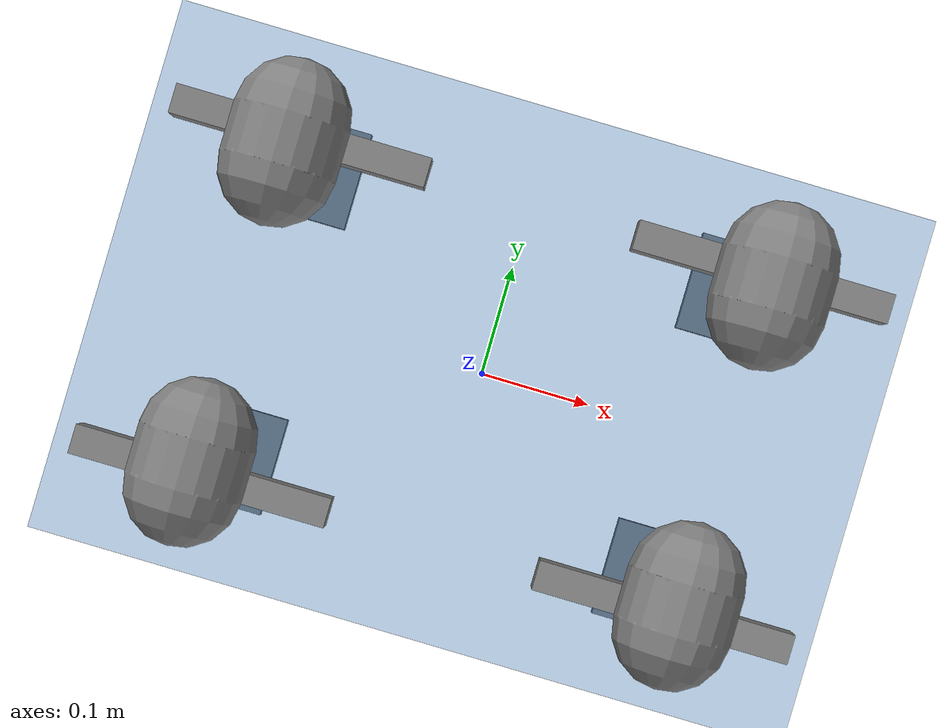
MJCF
<mujoco model="MuJoCo Model">
  <compiler angle="radian"/>

  <option gravity="0 0 -9.81" integrator="implicitfast">
    <flag multiccd="disable"/>
  </option>

  <worldbody>
    <geom name="ground_plane_0" size="5 5 5" type="plane" contype="2" conaffinity="2147483645" friction="2 0.005 0.0001" solref="0.02" rgba="0 0.3 0.6 1"/>
    <body name="body_0" pos="0 0 0.33">
      <inertial pos="0 0 0" quat="-0.000543471 0.713435 -0.00173769 0.700719" mass="7.279" diaginertia="0.107027 0.0980771 0.0244531"/>
      <joint name="joint_1" type="free"/>
      <geom name="shape_1_1" size="0.001" contype="4" conaffinity="2147483643" friction="2 0.005 0.0001" solref="0.02"/>
      <body name="body_1" pos="0.1934 0.0465 0">
        <inertial pos="0 0 0" quat="0.497014 0.499245 0.505462 0.498237" mass="0.767" diaginertia="0.000884029 0.000596003 0.000479967"/>
        <joint name="joint_2" pos="0 0 0" axis="1 0 0" solreflimit="-10000 -100" limited="true" range="-1.0472 1.0472" actuatorfrclimited="true" actuatorfrcrange="-23.7 23.7"/>
        <geom name="shape_2_2" size="0.046 0.02" pos="0 0.08 0" quat="0.707107 -0.707107 0 0" type="capsule" contype="4" conaffinity="2147483643" friction="2 0.005 0.0001" solref="0.02"/>
        <body name="body_2" pos="0 0.0955 0">
          <inertial pos="0 0 0" quat="0.829533 0.0847635 -0.0200632 0.551622" mass="1.241" diaginertia="0.00594973 0.00584149 0.000878787"/>
          <joint name="joint_6" pos="0 0 0" axis="0 1 0" solreflimit="-10000 -100" limited="true" range="-1.5708 3.13159" actuatorfrclimited="true" actuatorfrcrange="-23.7 23.7"/>
          <geom name="shape_3_3" size="0.1065 0.01225 0.017" pos="0 0 -0.1065" type="box" contype="4" conaffinity="2147483643" friction="2 0.005 0.0001" solref="0.02"/>
          <body name="body_3" pos="0 0 -0.213">
            <inertial pos="0 0 0" mass="0.194" diaginertia="0.0018236 0.0032398 0.0018236"/>
            <joint name="joint_10" pos="0 0 0" axis="0 1 0" solreflimit="-10000 -100" limited="true" range="-2.7227 -0.83776" actuatorfrclimited="true" actuatorfrcrange="-45.43 45.43"/>
            <geom name="shape_4_4" type="box" size="0.0283 0.0471 0.0082" pos="0 0 -0.2268" contype="4" conaffinity="2147483643" friction="2 0.005 0.0001" solref="0.02"/>
          </body>
        </body>
      </body>
      <body name="body_4" pos="0.1934 -0.0465 0">
        <inertial pos="0 0 0" quat="0.498237 0.505462 0.499245 0.497014" mass="0.767" diaginertia="0.000884029 0.000596003 0.000479967"/>
        <joint name="joint_3" pos="0 0 0" axis="1 0 0" solreflimit="-10000 -100" limited="true" range="-1.0472 1.0472" actuatorfrclimited="true" actuatorfrcrange="-23.7 23.7"/>
        <geom name="shape_5_5" size="0.046 0.02" pos="0 -0.08 0" quat="0.707107 -0.707107 0 0" type="capsule" contype="4" conaffinity="2147483643" friction="2 0.005 0.0001" solref="0.02"/>
        <body name="body_5" pos="0 -0.0955 0">
          <inertial pos="0 0 0" quat="0.551622 -0.0200632 0.0847635 0.829533" mass="1.241" diaginertia="0.00594973 0.00584149 0.000878787"/>
          <joint name="joint_7" pos="0 0 0" axis="0 1 0" solreflimit="-10000 -100" limited="true" range="-1.5708 3.13159" actuatorfrclimited="true" actuatorfrcrange="-23.7 23.7"/>
          <geom name="shape_6_6" size="0.1065 0.01225 0.017" pos="0 0 -0.1065" type="box" contype="4" conaffinity="2147483643" friction="2 0.005 0.0001" solref="0.02"/>
          <body name="body_6" pos="0 0 -0.213">
            <inertial pos="0 0 0" mass="0.194" diaginertia="0.0018236 0.0032398 0.0018236"/>
            <joint name="joint_11" pos="0 0 0" axis="0 1 0" solreflimit="-10000 -100" limited="true" range="-2.7227 -0.83776" actuatorfrclimited="true" actuatorfrcrange="-45.43 45.43"/>
            <geom name="shape_7_7" type="box" size="0.0283 0.0471 0.0082" pos="0 0 -0.2268" contype="4" conaffinity="2147483643" friction="2 0.005 0.0001" solref="0.02"/>
          </body>
        </body>
      </body>
      <body name="body_7" pos="-0.1934 0.0465 0">
        <inertial pos="0 0 0" quat="0.505462 0.498237 0.497014 0.499245" mass="0.767" diaginertia="0.000884029 0.000596003 0.000479967"/>
        <joint name="joint_4" pos="0 0 0" axis="1 0 0" solreflimit="-10000 -100" limited="true" range="-1.0472 1.0472" actuatorfrclimited="true" actuatorfrcrange="-23.7 23.7"/>
        <geom name="shape_8_8" size="0.046 0.02" pos="0 0.08 0" quat="0.707107 -0.707107 0 0" type="capsule" contype="4" conaffinity="2147483643" friction="2 0.005 0.0001" solref="0.02"/>
        <body name="body_8" pos="0 0.0955 0">
          <inertial pos="0 0 0" quat="0.829533 0.0847635 -0.0200632 0.551622" mass="1.241" diaginertia="0.00594973 0.00584149 0.000878787"/>
          <joint name="joint_8" pos="0 0 0" axis="0 1 0" solreflimit="-10000 -100" limited="true" range="-0.5236 3.13159" actuatorfrclimited="true" actuatorfrcrange="-23.7 23.7"/>
          <geom name="shape_9_9" size="0.1065 0.01225 0.017" pos="0 0 -0.1065" type="box" contype="4" conaffinity="2147483643" friction="2 0.005 0.0001" solref="0.02"/>
          <body name="body_9" pos="0 0 -0.213">
            <inertial pos="0 0 0" mass="0.194" diaginertia="0.0018236 0.0032398 0.0018236"/>
            <joint name="joint_12" pos="0 0 0" axis="0 1 0" solreflimit="-10000 -100" limited="true" range="-2.7227 -0.83776" actuatorfrclimited="true" actuatorfrcrange="-45.43 45.43"/>
            <geom name="shape_10_10" type="box" size="0.0283 0.0471 0.0082" pos="0 0 -0.2268" contype="4" conaffinity="2147483643" friction="2 0.005 0.0001" solref="0.02"/>
          </body>
        </body>
      </body>
      <body name="body_10" pos="-0.1934 -0.0465 0">
        <inertial pos="0 0 0" quat="0.499245 0.497014 0.498237 0.505462" mass="0.767" diaginertia="0.000884029 0.000596003 0.000479967"/>
        <joint name="joint_5" pos="0 0 0" axis="1 0 0" solreflimit="-10000 -100" limited="true" range="-1.0472 1.0472" actuatorfrclimited="true" actuatorfrcrange="-23.7 23.7"/>
        <geom name="shape_11_11" size="0.046 0.02" pos="0 -0.08 0" quat="0.707107 -0.707107 0 0" type="capsule" contype="4" conaffinity="2147483643" friction="2 0.005 0.0001" solref="0.02"/>
        <body name="body_11" pos="0 -0.0955 0">
          <inertial pos="0 0 0" quat="0.551622 -0.0200632 0.0847635 0.829533" mass="1.241" diaginertia="0.00594973 0.00584149 0.000878787"/>
          <joint name="joint_9" pos="0 0 0" axis="0 1 0" solreflimit="-10000 -100" limited="true" range="-0.5236 3.13159" actuatorfrclimited="true" actuatorfrcrange="-23.7 23.7"/>
          <geom name="shape_12_12" size="0.1065 0.01225 0.017" pos="0 0 -0.1065" type="box" contype="4" conaffinity="2147483643" friction="2 0.005 0.0001" solref="0.02"/>
          <body name="body_12" pos="0 0 -0.213">
            <inertial pos="0 0 0" mass="0.194" diaginertia="0.0018236 0.0032398 0.0018236"/>
            <joint name="joint_13" pos="0 0 0" axis="0 1 0" solreflimit="-10000 -100" limited="true" range="-2.7227 -0.83776" actuatorfrclimited="true" actuatorfrcrange="-45.43 45.43"/>
            <geom name="shape_13_13" type="box" size="0.0283 0.0471 0.0082" pos="0 0 -0.2268" contype="4" conaffinity="2147483643" friction="2 0.005 0.0001" solref="0.02"/>
          </body>
        </body>
      </body>
    </body>
  </worldbody>

  <contact>
    <exclude body1="body_0" body2="body_1"/>
    <exclude body1="body_0" body2="body_2"/>
    <exclude body1="body_0" body2="body_3"/>
    <exclude body1="body_0" body2="body_4"/>
    <exclude body1="body_0" body2="body_5"/>
    <exclude body1="body_0" body2="body_6"/>
    <exclude body1="body_0" body2="body_7"/>
    <exclude body1="body_0" body2="body_8"/>
    <exclude body1="body_0" body2="body_9"/>
    <exclude body1="body_0" body2="body_10"/>
    <exclude body1="body_0" body2="body_11"/>
    <exclude body1="body_0" body2="body_12"/>
    <exclude body1="body_1" body2="body_2"/>
    <exclude body1="body_1" body2="body_3"/>
    <exclude body1="body_1" body2="body_4"/>
    <exclude body1="body_1" body2="body_5"/>
    <exclude body1="body_1" body2="body_6"/>
    <exclude body1="body_1" body2="body_7"/>
    <exclude body1="body_1" body2="body_8"/>
    <exclude body1="body_1" body2="body_9"/>
    <exclude body1="body_1" body2="body_10"/>
    <exclude body1="body_1" body2="body_11"/>
    <exclude body1="body_1" body2="body_12"/>
    <exclude body1="body_2" body2="body_3"/>
    <exclude body1="body_2" body2="body_4"/>
    <exclude body1="body_2" body2="body_5"/>
    <exclude body1="body_2" body2="body_6"/>
    <exclude body1="body_2" body2="body_7"/>
    <exclude body1="body_2" body2="body_8"/>
    <exclude body1="body_2" body2="body_9"/>
    <exclude body1="body_2" body2="body_10"/>
    <exclude body1="body_2" body2="body_11"/>
    <exclude body1="body_2" body2="body_12"/>
    <exclude body1="body_3" body2="body_4"/>
    <exclude body1="body_3" body2="body_5"/>
    <exclude body1="body_3" body2="body_6"/>
    <exclude body1="body_3" body2="body_7"/>
    <exclude body1="body_3" body2="body_8"/>
    <exclude body1="body_3" body2="body_9"/>
    <exclude body1="body_3" body2="body_10"/>
    <exclude body1="body_3" body2="body_11"/>
    <exclude body1="body_3" body2="body_12"/>
    <exclude body1="body_4" body2="body_5"/>
    <exclude body1="body_4" body2="body_6"/>
    <exclude body1="body_4" body2="body_7"/>
    <exclude body1="body_4" body2="body_8"/>
    <exclude body1="body_4" body2="body_9"/>
    <exclude body1="body_4" body2="body_10"/>
    <exclude body1="body_4" body2="body_11"/>
    <exclude body1="body_4" body2="body_12"/>
    <exclude body1="body_5" body2="body_6"/>
    <exclude body1="body_5" body2="body_7"/>
    <exclude body1="body_5" body2="body_8"/>
    <exclude body1="body_5" body2="body_9"/>
    <exclude body1="body_5" body2="body_10"/>
    <exclude body1="body_5" body2="body_11"/>
    <exclude body1="body_5" body2="body_12"/>
    <exclude body1="body_6" body2="body_7"/>
    <exclude body1="body_6" body2="body_8"/>
    <exclude body1="body_6" body2="body_9"/>
    <exclude body1="body_6" body2="body_10"/>
    <exclude body1="body_6" body2="body_11"/>
    <exclude body1="body_6" body2="body_12"/>
    <exclude body1="body_7" body2="body_8"/>
    <exclude body1="body_7" body2="body_9"/>
    <exclude body1="body_7" body2="body_10"/>
    <exclude body1="body_7" body2="body_11"/>
    <exclude body1="body_7" body2="body_12"/>
    <exclude body1="body_8" body2="body_9"/>
    <exclude body1="body_8" body2="body_10"/>
    <exclude body1="body_8" body2="body_11"/>
    <exclude body1="body_8" body2="body_12"/>
    <exclude body1="body_9" body2="body_10"/>
    <exclude body1="body_9" body2="body_11"/>
    <exclude body1="body_9" body2="body_12"/>
    <exclude body1="body_10" body2="body_11"/>
    <exclude body1="body_10" body2="body_12"/>
    <exclude body1="body_11" body2="body_12"/>
  </contact>

  <actuator>
    <general joint="joint_2" biastype="affine" gainprm="250" biasprm="0 -250"/>
    <general joint="joint_2" biastype="affine" gainprm="6" biasprm="0 0 -6"/>
    <general joint="joint_6" biastype="affine" gainprm="250" biasprm="0 -250"/>
    <general joint="joint_6" biastype="affine" gainprm="6" biasprm="0 0 -6"/>
    <general joint="joint_10" biastype="affine" gainprm="250" biasprm="0 -250"/>
    <general joint="joint_10" biastype="affine" gainprm="6" biasprm="0 0 -6"/>
    <general joint="joint_3" biastype="affine" gainprm="250" biasprm="0 -250"/>
    <general joint="joint_3" biastype="affine" gainprm="6" biasprm="0 0 -6"/>
    <general joint="joint_7" biastype="affine" gainprm="250" biasprm="0 -250"/>
    <general joint="joint_7" biastype="affine" gainprm="6" biasprm="0 0 -6"/>
    <general joint="joint_11" biastype="affine" gainprm="250" biasprm="0 -250"/>
    <general joint="joint_11" biastype="affine" gainprm="6" biasprm="0 0 -6"/>
    <general joint="joint_4" biastype="affine" gainprm="250" biasprm="0 -250"/>
    <general joint="joint_4" biastype="affine" gainprm="6" biasprm="0 0 -6"/>
    <general joint="joint_8" biastype="affine" gainprm="250" biasprm="0 -250"/>
    <general joint="joint_8" biastype="affine" gainprm="6" biasprm="0 0 -6"/>
    <general joint="joint_12" biastype="affine" gainprm="250" biasprm="0 -250"/>
    <general joint="joint_12" biastype="affine" gainprm="6" biasprm="0 0 -6"/>
    <general joint="joint_5" biastype="affine" gainprm="250" biasprm="0 -250"/>
    <general joint="joint_5" biastype="affine" gainprm="6" biasprm="0 0 -6"/>
    <general joint="joint_9" biastype="affine" gainprm="250" biasprm="0 -250"/>
    <general joint="joint_9" biastype="affine" gainprm="6" biasprm="0 0 -6"/>
    <general joint="joint_13" biastype="affine" gainprm="250" biasprm="0 -250"/>
    <general joint="joint_13" biastype="affine" gainprm="6" biasprm="0 0 -6"/>
  </actuator>
</mujoco>
